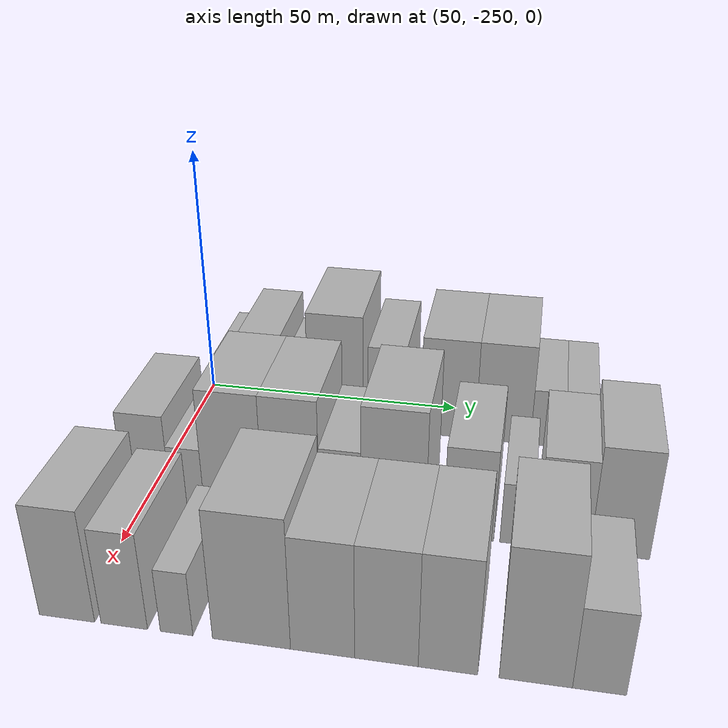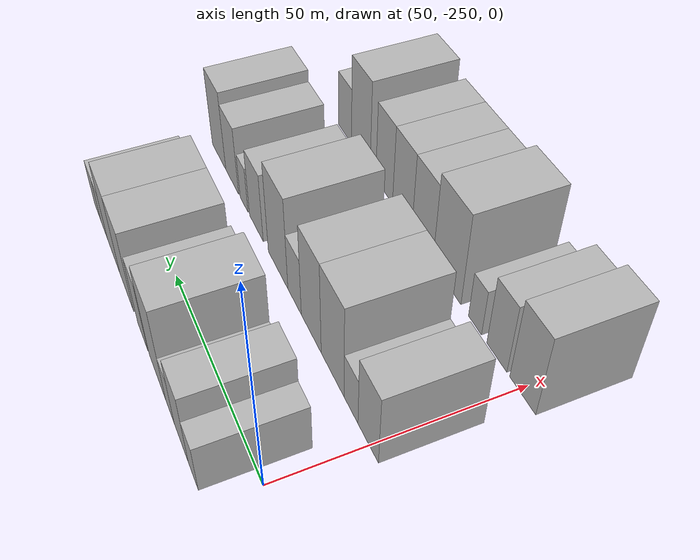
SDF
<sdf version="1.6">
 <world name="default">
  <model name="building_11">
   <static>1</static>
   <pose>50.0000 -243.8855 0 0.000000 0.000000 0.000000</pose>
   <link name="link">
    <pose>0 0 6.00 0 0 0</pose>
    <collision name="collision"><geometry><box><size>20.0000 5.5351 12.0000</size></box></geometry></collision>
    <visual name="visual">
     <cast_shadows>0</cast_shadows>
     <geometry><box><size>20.0000 5.5351 12.0000</size></box></geometry>
     <material>
      <script>
       <uri>model://HANNAS_wall/materials/scripts</uri>
       <uri>model://HANNAS_wall/materials/textures</uri>
       <name>vrc/HANNAS_wall</name>
      </script>
     </material>
    </visual>
   </link>
  </model>
  <model name="building_12">
   <static>1</static>
   <pose>50.0000 -236.9930 0 0.000000 0.000000 0.000000</pose>
   <link name="link">
    <pose>0 0 9.00 0 0 0</pose>
    <collision name="collision"><geometry><box><size>20.0000 8.2500 18.0000</size></box></geometry></collision>
    <visual name="visual">
     <cast_shadows>0</cast_shadows>
     <geometry><box><size>20.0000 8.2500 18.0000</size></box></geometry>
     <material>
      <script>
       <uri>model://HANNAS_wall/materials/scripts</uri>
       <uri>model://HANNAS_wall/materials/textures</uri>
       <name>vrc/HANNAS_wall</name>
      </script>
     </material>
    </visual>
   </link>
  </model>
  <model name="building_13">
   <static>1</static>
   <pose>50.0000 -230.2157 0 0.000000 0.000000 0.000000</pose>
   <link name="link">
    <pose>0 0 6.00 0 0 0</pose>
    <collision name="collision"><geometry><box><size>20.0000 5.3045 12.0000</size></box></geometry></collision>
    <visual name="visual">
     <cast_shadows>0</cast_shadows>
     <geometry><box><size>20.0000 5.3045 12.0000</size></box></geometry>
     <material>
      <script>
       <uri>model://HANNAS_wall/materials/scripts</uri>
       <uri>model://HANNAS_wall/materials/textures</uri>
       <name>vrc/HANNAS_wall</name>
      </script>
     </material>
    </visual>
   </link>
  </model>
  <model name="building_14">
   <static>1</static>
   <pose>50.0000 -222.1826 0 0.000000 0.000000 0.000000</pose>
   <link name="link">
    <pose>0 0 12.00 0 0 0</pose>
    <collision name="collision"><geometry><box><size>20.0000 10.7617 24.0000</size></box></geometry></collision>
    <visual name="visual">
     <cast_shadows>0</cast_shadows>
     <geometry><box><size>20.0000 10.7617 24.0000</size></box></geometry>
     <material>
      <script>
       <uri>model://HANNAS_wall/materials/scripts</uri>
       <uri>model://HANNAS_wall/materials/textures</uri>
       <name>vrc/HANNAS_wall</name>
      </script>
     </material>
    </visual>
   </link>
  </model>
  <model name="building_15">
   <static>1</static>
   <pose>50.0000 -212.1876 0 0.000000 0.000000 0.000000</pose>
   <link name="link">
    <pose>0 0 9.00 0 0 0</pose>
    <collision name="collision"><geometry><box><size>20.0000 7.2282 18.0000</size></box></geometry></collision>
    <visual name="visual">
     <cast_shadows>0</cast_shadows>
     <geometry><box><size>20.0000 7.2282 18.0000</size></box></geometry>
     <material>
      <script>
       <uri>model://HANNAS_wall/materials/scripts</uri>
       <uri>model://HANNAS_wall/materials/textures</uri>
       <name>vrc/HANNAS_wall</name>
      </script>
     </material>
    </visual>
   </link>
  </model>
  <model name="building_16">
   <static>1</static>
   <pose>50.0000 -200.3378 0 0.000000 0.000000 0.000000</pose>
   <link name="link">
    <pose>0 0 10.50 0 0 0</pose>
    <collision name="collision"><geometry><box><size>20.0000 10.4713 21.0000</size></box></geometry></collision>
    <visual name="visual">
     <cast_shadows>0</cast_shadows>
     <geometry><box><size>20.0000 10.4713 21.0000</size></box></geometry>
     <material>
      <script>
       <uri>model://HANNAS_wall/materials/scripts</uri>
       <uri>model://HANNAS_wall/materials/textures</uri>
       <name>vrc/HANNAS_wall</name>
      </script>
     </material>
    </visual>
   </link>
  </model>
  <model name="building_17">
   <static>1</static>
   <pose>50.0000 -189.9298 0 0.000000 0.000000 0.000000</pose>
   <link name="link">
    <pose>0 0 10.50 0 0 0</pose>
    <collision name="collision"><geometry><box><size>20.0000 10.3448 21.0000</size></box></geometry></collision>
    <visual name="visual">
     <cast_shadows>0</cast_shadows>
     <geometry><box><size>20.0000 10.3448 21.0000</size></box></geometry>
     <material>
      <script>
       <uri>model://HANNAS_wall/materials/scripts</uri>
       <uri>model://HANNAS_wall/materials/textures</uri>
       <name>vrc/HANNAS_wall</name>
      </script>
     </material>
    </visual>
   </link>
  </model>
  <model name="building_18">
   <static>1</static>
   <pose>50.0000 -181.8283 0 0.000000 0.000000 0.000000</pose>
   <link name="link">
    <pose>0 0 6.00 0 0 0</pose>
    <collision name="collision"><geometry><box><size>20.0000 5.8581 12.0000</size></box></geometry></collision>
    <visual name="visual">
     <cast_shadows>0</cast_shadows>
     <geometry><box><size>20.0000 5.8581 12.0000</size></box></geometry>
     <material>
      <script>
       <uri>model://HANNAS_wall/materials/scripts</uri>
       <uri>model://HANNAS_wall/materials/textures</uri>
       <name>vrc/HANNAS_wall</name>
      </script>
     </material>
    </visual>
   </link>
  </model>
  <model name="building_19">
   <static>1</static>
   <pose>50.0000 -175.9938 0 0.000000 0.000000 0.000000</pose>
   <link name="link">
    <pose>0 0 6.00 0 0 0</pose>
    <collision name="collision"><geometry><box><size>20.0000 5.8110 12.0000</size></box></geometry></collision>
    <visual name="visual">
     <cast_shadows>0</cast_shadows>
     <geometry><box><size>20.0000 5.8110 12.0000</size></box></geometry>
     <material>
      <script>
       <uri>model://HANNAS_wall/materials/scripts</uri>
       <uri>model://HANNAS_wall/materials/textures</uri>
       <name>vrc/HANNAS_wall</name>
      </script>
     </material>
    </visual>
   </link>
  </model>
  <model name="building_86">
   <static>1</static>
   <pose>79.0000 -249.4897 0 0.000000 0.000000 0.000000</pose>
   <link name="link">
    <pose>0 0 9.00 0 0 0</pose>
    <collision name="collision"><geometry><box><size>20.0000 8.3651 18.0000</size></box></geometry></collision>
    <visual name="visual">
     <cast_shadows>0</cast_shadows>
     <geometry><box><size>20.0000 8.3651 18.0000</size></box></geometry>
     <material>
      <script>
       <uri>model://HANNAS_wall/materials/scripts</uri>
       <uri>model://HANNAS_wall/materials/textures</uri>
       <name>vrc/HANNAS_wall</name>
      </script>
     </material>
    </visual>
   </link>
  </model>
  <model name="building_87">
   <static>1</static>
   <pose>79.0000 -242.3172 0 0.000000 0.000000 0.000000</pose>
   <link name="link">
    <pose>0 0 6.00 0 0 0</pose>
    <collision name="collision"><geometry><box><size>20.0000 5.9799 12.0000</size></box></geometry></collision>
    <visual name="visual">
     <cast_shadows>0</cast_shadows>
     <geometry><box><size>20.0000 5.9799 12.0000</size></box></geometry>
     <material>
      <script>
       <uri>model://HANNAS_wall/materials/scripts</uri>
       <uri>model://HANNAS_wall/materials/textures</uri>
       <name>vrc/HANNAS_wall</name>
      </script>
     </material>
    </visual>
   </link>
  </model>
  <model name="building_88">
   <static>1</static>
   <pose>79.0000 -234.0533 0 0.000000 0.000000 0.000000</pose>
   <link name="link">
    <pose>0 0 12.00 0 0 0</pose>
    <collision name="collision"><geometry><box><size>20.0000 10.5480 24.0000</size></box></geometry></collision>
    <visual name="visual">
     <cast_shadows>0</cast_shadows>
     <geometry><box><size>20.0000 10.5480 24.0000</size></box></geometry>
     <material>
      <script>
       <uri>model://HANNAS_wall/materials/scripts</uri>
       <uri>model://HANNAS_wall/materials/textures</uri>
       <name>vrc/HANNAS_wall</name>
      </script>
     </material>
    </visual>
   </link>
  </model>
  <model name="building_89">
   <static>1</static>
   <pose>79.0000 -223.8552 0 0.000000 0.000000 0.000000</pose>
   <link name="link">
    <pose>0 0 12.00 0 0 0</pose>
    <collision name="collision"><geometry><box><size>20.0000 9.8482 24.0000</size></box></geometry></collision>
    <visual name="visual">
     <cast_shadows>0</cast_shadows>
     <geometry><box><size>20.0000 9.8482 24.0000</size></box></geometry>
     <material>
      <script>
       <uri>model://HANNAS_wall/materials/scripts</uri>
       <uri>model://HANNAS_wall/materials/textures</uri>
       <name>vrc/HANNAS_wall</name>
      </script>
     </material>
    </visual>
   </link>
  </model>
  <model name="building_90">
   <static>1</static>
   <pose>79.0000 -215.3906 0 0.000000 0.000000 0.000000</pose>
   <link name="link">
    <pose>0 0 7.50 0 0 0</pose>
    <collision name="collision"><geometry><box><size>20.0000 7.0810 15.0000</size></box></geometry></collision>
    <visual name="visual">
     <cast_shadows>0</cast_shadows>
     <geometry><box><size>20.0000 7.0810 15.0000</size></box></geometry>
     <material>
      <script>
       <uri>model://HANNAS_wall/materials/scripts</uri>
       <uri>model://HANNAS_wall/materials/textures</uri>
       <name>vrc/HANNAS_wall</name>
      </script>
     </material>
    </visual>
   </link>
  </model>
  <model name="building_91">
   <static>1</static>
   <pose>79.0000 -206.3717 0 0.000000 0.000000 0.000000</pose>
   <link name="link">
    <pose>0 0 12.00 0 0 0</pose>
    <collision name="collision"><geometry><box><size>20.0000 10.9567 24.0000</size></box></geometry></collision>
    <visual name="visual">
     <cast_shadows>0</cast_shadows>
     <geometry><box><size>20.0000 10.9567 24.0000</size></box></geometry>
     <material>
      <script>
       <uri>model://HANNAS_wall/materials/scripts</uri>
       <uri>model://HANNAS_wall/materials/textures</uri>
       <name>vrc/HANNAS_wall</name>
      </script>
     </material>
    </visual>
   </link>
  </model>
  <model name="building_92">
   <static>1</static>
   <pose>79.0000 -193.7227 0 0.000000 0.000000 0.000000</pose>
   <link name="link">
    <pose>0 0 9.00 0 0 0</pose>
    <collision name="collision"><geometry><box><size>20.0000 8.3415 18.0000</size></box></geometry></collision>
    <visual name="visual">
     <cast_shadows>0</cast_shadows>
     <geometry><box><size>20.0000 8.3415 18.0000</size></box></geometry>
     <material>
      <script>
       <uri>model://HANNAS_wall/materials/scripts</uri>
       <uri>model://HANNAS_wall/materials/textures</uri>
       <name>vrc/HANNAS_wall</name>
      </script>
     </material>
    </visual>
   </link>
  </model>
  <model name="building_93">
   <static>1</static>
   <pose>79.0000 -186.0486 0 0.000000 0.000000 0.000000</pose>
   <link name="link">
    <pose>0 0 6.00 0 0 0</pose>
    <collision name="collision"><geometry><box><size>20.0000 5.0067 12.0000</size></box></geometry></collision>
    <visual name="visual">
     <cast_shadows>0</cast_shadows>
     <geometry><box><size>20.0000 5.0067 12.0000</size></box></geometry>
     <material>
      <script>
       <uri>model://HANNAS_wall/materials/scripts</uri>
       <uri>model://HANNAS_wall/materials/textures</uri>
       <name>vrc/HANNAS_wall</name>
      </script>
     </material>
    </visual>
   </link>
  </model>
  <model name="building_94">
   <static>1</static>
   <pose>79.0000 -178.2414 0 0.000000 0.000000 0.000000</pose>
   <link name="link">
    <pose>0 0 9.00 0 0 0</pose>
    <collision name="collision"><geometry><box><size>20.0000 8.6076 18.0000</size></box></geometry></collision>
    <visual name="visual">
     <cast_shadows>0</cast_shadows>
     <geometry><box><size>20.0000 8.6076 18.0000</size></box></geometry>
     <material>
      <script>
       <uri>model://HANNAS_wall/materials/scripts</uri>
       <uri>model://HANNAS_wall/materials/textures</uri>
       <name>vrc/HANNAS_wall</name>
      </script>
     </material>
    </visual>
   </link>
  </model>
  <model name="building_95">
   <static>1</static>
   <pose>79.0000 -169.1924 0 0.000000 0.000000 0.000000</pose>
   <link name="link">
    <pose>0 0 10.50 0 0 0</pose>
    <collision name="collision"><geometry><box><size>20.0000 9.4906 21.0000</size></box></geometry></collision>
    <visual name="visual">
     <cast_shadows>0</cast_shadows>
     <geometry><box><size>20.0000 9.4906 21.0000</size></box></geometry>
     <material>
      <script>
       <uri>model://HANNAS_wall/materials/scripts</uri>
       <uri>model://HANNAS_wall/materials/textures</uri>
       <name>vrc/HANNAS_wall</name>
      </script>
     </material>
    </visual>
   </link>
  </model>
  <model name="building_159">
   <static>1</static>
   <pose>108.0000 -251.4182 0 0.000000 0.000000 0.000000</pose>
   <link name="link">
    <pose>0 0 10.50 0 0 0</pose>
    <collision name="collision"><geometry><box><size>20.0000 8.8542 21.0000</size></box></geometry></collision>
    <visual name="visual">
     <cast_shadows>0</cast_shadows>
     <geometry><box><size>20.0000 8.8542 21.0000</size></box></geometry>
     <material>
      <script>
       <uri>model://HANNAS_wall/materials/scripts</uri>
       <uri>model://HANNAS_wall/materials/textures</uri>
       <name>vrc/HANNAS_wall</name>
      </script>
     </material>
    </visual>
   </link>
  </model>
  <model name="building_160">
   <static>1</static>
   <pose>108.0000 -242.3347 0 0.000000 0.000000 0.000000</pose>
   <link name="link">
    <pose>0 0 9.00 0 0 0</pose>
    <collision name="collision"><geometry><box><size>20.0000 7.3128 18.0000</size></box></geometry></collision>
    <visual name="visual">
     <cast_shadows>0</cast_shadows>
     <geometry><box><size>20.0000 7.3128 18.0000</size></box></geometry>
     <material>
      <script>
       <uri>model://HANNAS_wall/materials/scripts</uri>
       <uri>model://HANNAS_wall/materials/textures</uri>
       <name>vrc/HANNAS_wall</name>
      </script>
     </material>
    </visual>
   </link>
  </model>
  <model name="building_161">
   <static>1</static>
   <pose>108.0000 -234.1637 0 0.000000 0.000000 0.000000</pose>
   <link name="link">
    <pose>0 0 6.00 0 0 0</pose>
    <collision name="collision"><geometry><box><size>20.0000 5.0293 12.0000</size></box></geometry></collision>
    <visual name="visual">
     <cast_shadows>0</cast_shadows>
     <geometry><box><size>20.0000 5.0293 12.0000</size></box></geometry>
     <material>
      <script>
       <uri>model://HANNAS_wall/materials/scripts</uri>
       <uri>model://HANNAS_wall/materials/textures</uri>
       <name>vrc/HANNAS_wall</name>
      </script>
     </material>
    </visual>
   </link>
  </model>
  <model name="building_162">
   <static>1</static>
   <pose>108.0000 -222.7541 0 0.000000 0.000000 0.000000</pose>
   <link name="link">
    <pose>0 0 12.00 0 0 0</pose>
    <collision name="collision"><geometry><box><size>20.0000 11.7898 24.0000</size></box></geometry></collision>
    <visual name="visual">
     <cast_shadows>0</cast_shadows>
     <geometry><box><size>20.0000 11.7898 24.0000</size></box></geometry>
     <material>
      <script>
       <uri>model://HANNAS_wall/materials/scripts</uri>
       <uri>model://HANNAS_wall/materials/textures</uri>
       <name>vrc/HANNAS_wall</name>
      </script>
     </material>
    </visual>
   </link>
  </model>
  <model name="building_163">
   <static>1</static>
   <pose>108.0000 -212.1204 0 0.000000 0.000000 0.000000</pose>
   <link name="link">
    <pose>0 0 10.50 0 0 0</pose>
    <collision name="collision"><geometry><box><size>20.0000 9.4776 21.0000</size></box></geometry></collision>
    <visual name="visual">
     <cast_shadows>0</cast_shadows>
     <geometry><box><size>20.0000 9.4776 21.0000</size></box></geometry>
     <material>
      <script>
       <uri>model://HANNAS_wall/materials/scripts</uri>
       <uri>model://HANNAS_wall/materials/textures</uri>
       <name>vrc/HANNAS_wall</name>
      </script>
     </material>
    </visual>
   </link>
  </model>
  <model name="building_164">
   <static>1</static>
   <pose>108.0000 -202.7797 0 0.000000 0.000000 0.000000</pose>
   <link name="link">
    <pose>0 0 10.50 0 0 0</pose>
    <collision name="collision"><geometry><box><size>20.0000 9.2038 21.0000</size></box></geometry></collision>
    <visual name="visual">
     <cast_shadows>0</cast_shadows>
     <geometry><box><size>20.0000 9.2038 21.0000</size></box></geometry>
     <material>
      <script>
       <uri>model://HANNAS_wall/materials/scripts</uri>
       <uri>model://HANNAS_wall/materials/textures</uri>
       <name>vrc/HANNAS_wall</name>
      </script>
     </material>
    </visual>
   </link>
  </model>
  <model name="building_165">
   <static>1</static>
   <pose>108.0000 -193.9456 0 0.000000 0.000000 0.000000</pose>
   <link name="link">
    <pose>0 0 10.50 0 0 0</pose>
    <collision name="collision"><geometry><box><size>20.0000 8.4644 21.0000</size></box></geometry></collision>
    <visual name="visual">
     <cast_shadows>0</cast_shadows>
     <geometry><box><size>20.0000 8.4644 21.0000</size></box></geometry>
     <material>
      <script>
       <uri>model://HANNAS_wall/materials/scripts</uri>
       <uri>model://HANNAS_wall/materials/textures</uri>
       <name>vrc/HANNAS_wall</name>
      </script>
     </material>
    </visual>
   </link>
  </model>
  <model name="building_166">
   <static>1</static>
   <pose>108.0000 -181.6306 0 0.000000 0.000000 0.000000</pose>
   <link name="link">
    <pose>0 0 12.00 0 0 0</pose>
    <collision name="collision"><geometry><box><size>20.0000 10.1655 24.0000</size></box></geometry></collision>
    <visual name="visual">
     <cast_shadows>0</cast_shadows>
     <geometry><box><size>20.0000 10.1655 24.0000</size></box></geometry>
     <material>
      <script>
       <uri>model://HANNAS_wall/materials/scripts</uri>
       <uri>model://HANNAS_wall/materials/textures</uri>
       <name>vrc/HANNAS_wall</name>
      </script>
     </material>
    </visual>
   </link>
  </model>
  <model name="building_167">
   <static>1</static>
   <pose>108.0000 -172.8674 0 0.000000 0.000000 0.000000</pose>
   <link name="link">
    <pose>0 0 7.50 0 0 0</pose>
    <collision name="collision"><geometry><box><size>20.0000 7.3609 15.0000</size></box></geometry></collision>
    <visual name="visual">
     <cast_shadows>0</cast_shadows>
     <geometry><box><size>20.0000 7.3609 15.0000</size></box></geometry>
     <material>
      <script>
       <uri>model://HANNAS_wall/materials/scripts</uri>
       <uri>model://HANNAS_wall/materials/textures</uri>
       <name>vrc/HANNAS_wall</name>
      </script>
     </material>
    </visual>
   </link>
  </model>
 </world>
</sdf>
